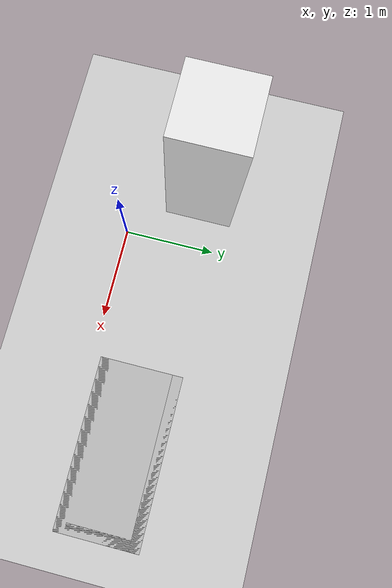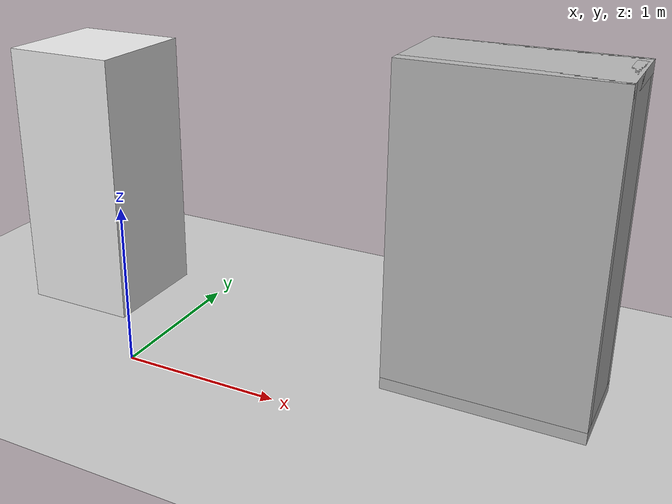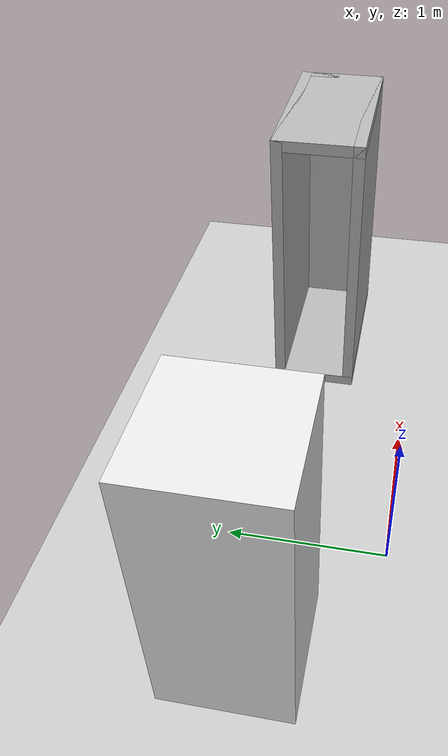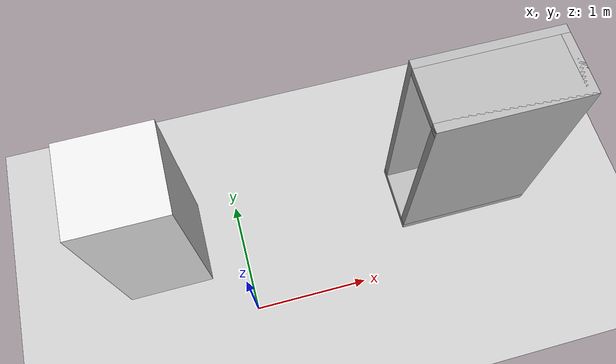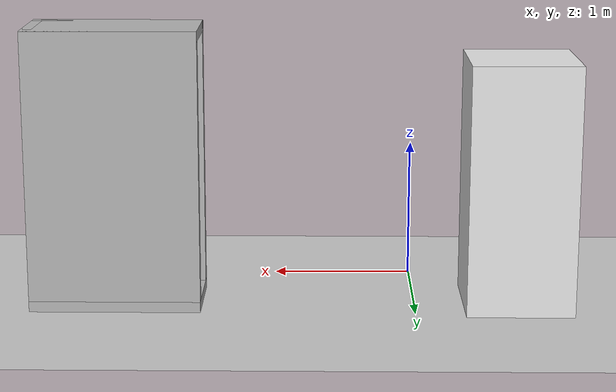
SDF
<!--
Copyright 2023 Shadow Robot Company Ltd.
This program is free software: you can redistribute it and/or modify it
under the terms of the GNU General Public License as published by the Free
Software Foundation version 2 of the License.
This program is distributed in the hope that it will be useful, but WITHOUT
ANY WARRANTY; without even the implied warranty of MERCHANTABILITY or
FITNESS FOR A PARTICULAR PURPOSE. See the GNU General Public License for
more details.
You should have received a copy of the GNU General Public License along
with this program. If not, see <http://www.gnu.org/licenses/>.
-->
<sdf version="1.4">
 <world name="default">
  <include><uri>model://ground</uri><name>ground</name><pose>-0.20 0.60 0.0 0 0 0</pose></include>
  <include><uri>model://ground</uri><name>ground_1</name><pose>-0.20 0.60 2.7 0 0 0</pose></include>
  <light type="directional" name="lab_light">
   <pose>0 0 0 -1.55 0 0</pose>
   <diffuse>.8 .8 .8 1</diffuse>
   <specular>.2 .2 .2 1</specular>
   <attenuation>
    <range>20</range>
    <constant>0.9</constant>
    <linear>0.01</linear>
    <quadratic>0.001</quadratic>
   </attenuation>
   <direction>0 0 -1</direction>
  </light>
  <include>
   <uri>model://human</uri>
   <static>true</static>
   <name>human</name>
   <pose>-0.72 0.75 0.89 3.145 1.57079632679 3.1451</pose>
  </include>
  <include>
   <uri>model://server_rack</uri>
   <static>true</static>
   <name>server_rack</name>
   <pose>1.5 1 0.0 0 0 -1.57079632679</pose>
  </include>
  <physics type="ode">
   <gravity>0.000000 0.000000 -9.810000</gravity>
   <ode>
    <solver><type>quick</type><iters>100</iters><precon_iters>0</precon_iters><sor>1.000000</sor></solver>
    <constraints>
     <cfm>0.000000</cfm>
     <erp>0.500000</erp>
     <contact_max_correcting_vel>1000.000000</contact_max_correcting_vel>
     <contact_surface_layer>0.00000</contact_surface_layer>
    </constraints>
   </ode>
   <real_time_factor>1.0</real_time_factor>
   <max_step_size>0.001000</max_step_size>
  </physics>
  <scene><ambient>0.4 0.4 0.4 1</ambient><background>0.7 0.7 1 1</background><shadows>1</shadows></scene>
 </world>
</sdf>

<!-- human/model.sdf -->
<sdf version="1.4">
<model name="human">
    <static>true</static>
    <link name="link">
      <collision name="collision_human">
        <geometry>
          <box>
            <size>1.75 0.75 0.75</size>
          </box>
        </geometry>
      </collision>
      <visual name="visual_human">
        <geometry>
          <box>
            <size>1.75 0.75 0.75</size>
          </box>
        </geometry>
        <material>
          <script>
            <uri>file://media/materials/scripts/gazebo.material</uri>
            <name>Gazebo/White</name>
          </script>
        </material>
      </visual>
    </link>
  </model>
</sdf>

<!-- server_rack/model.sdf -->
<sdf version="1.4">
<model name="server_rack">
    <static>true</static>

    <link name="server_bottom">
      <collision name="server_bottom_col">
        <pose>0.3 0.6 0.0375 0 0 0 </pose>
        <geometry>
          <box>
            <size>0.6 1.2 0.075</size>
          </box>
        </geometry>
      </collision>
      <visual name="server_bottom_vis">
        <pose>0.3 0.6 0.0375 0 0 0 </pose>
        <geometry>
          <box>
            <size>0.6 1.2 0.075</size>
          </box>
        </geometry>
      </visual>
    </link>

    <link name="server_wall_left">
      <collision name="server_wall_left_col">
        <pose>0.0375 0.6 1.025 0 0 0 </pose>
        <geometry>
          <box>
            <size>0.075 1.2 1.9</size>
          </box>
        </geometry>
      </collision>
      <visual name="server_wall_left_vis">
        <pose>0.0375 0.6 1.025 0 0 0 </pose>
        <geometry>
          <box>
            <size>0.075 1.2 1.9</size>
          </box>
        </geometry>
      </visual>
    </link>

    <link name="server_wall_right">
      <collision name="server_wall_right_col">
        <pose>0.5625 0.6 1.025 0 0 0 </pose>
        <geometry>
          <box>
            <size>0.075 1.2 1.9</size>
          </box>
        </geometry>
      </collision>
      <visual name="server_wall_right_vis">
        <pose>0.5625 0.6 1.025 0 0 0 </pose>
        <geometry>
          <box>
            <size>0.075 1.2 1.9</size>
          </box>
        </geometry>
      </visual>
    </link>

    <link name="server_wall_back">
      <collision name="server_wall_back_col">
        <pose>0.3 1.1625 1.025 0 0 0 </pose>
        <geometry>
          <box>
            <size>0.45 0.075 1.9</size>
          </box>
        </geometry>
      </collision>
      <visual name="server_wall_back_vis">
        <pose>0.3 1.1625 1.025 0 0 0 </pose>
        <geometry>
          <box>
            <size>0.45 0.075 1.9</size>
          </box>
        </geometry>
      </visual>
    </link>

    <link name="server_wall_top">
      <collision name="server_wall_back_col">
        <pose>0.3 0.6 1.9375 0 0 0 </pose>
        <geometry>
          <box>
            <size>0.6 1.2 0.075</size>
          </box>
        </geometry>
      </collision>
      <visual name="server_wall_back_vis">
        <pose>0.3 0.6 1.9375 0 0 0 </pose>
        <geometry>
          <box>
            <size>0.6 1.2 0.075</size>
          </box>
        </geometry>
      </visual>
    </link>

</model>
</sdf>
